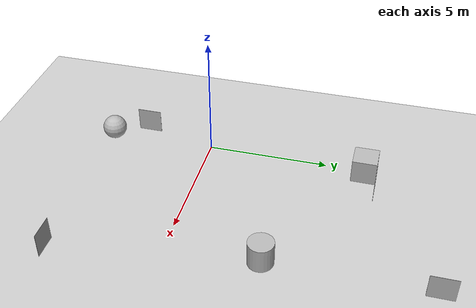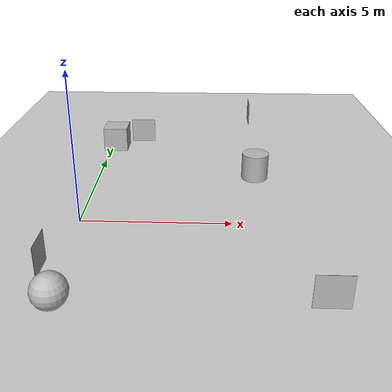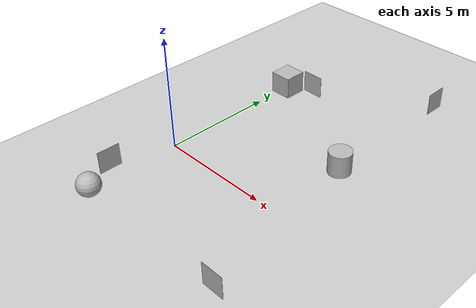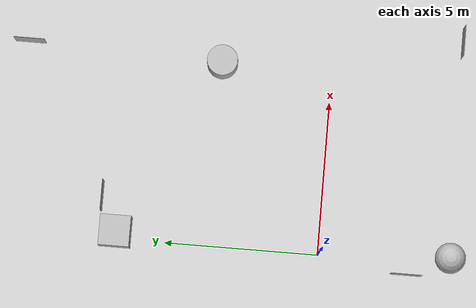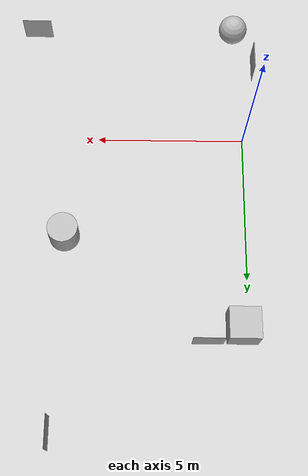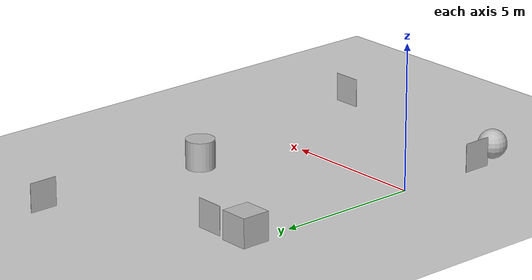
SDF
<sdf version="1.7">
 <world name="default">
  <light name="sun" type="directional">
   <pose>0 0 10 0 -0 0</pose>
   <diffuse>0.8 0.8 0.8 1</diffuse>
   <specular>0.2 0.2 0.2 1</specular>
   <attenuation>
    <range>1000</range>
    <constant>0.9</constant>
    <linear>0.01</linear>
    <quadratic>0.001</quadratic>
   </attenuation>
   <direction>-0.5 0.1 -0.9</direction>
   <spot><inner_angle>0</inner_angle><outer_angle>0</outer_angle><falloff>0</falloff></spot>
  </light>
  <model name="ground_plane">
   <static>1</static>
   <link name="link">
    <collision name="collision">
     <geometry><plane><normal>0 0 1</normal><size>100 100</size></plane></geometry>
     <surface>
      <contact><collide_bitmask>65535</collide_bitmask></contact>
      <friction><ode><mu>100</mu><mu2>50</mu2></ode></friction>
     </surface>
    </collision>
    <visual name="visual">
     <cast_shadows>0</cast_shadows>
     <geometry><plane><normal>0 0 1</normal><size>100 100</size></plane></geometry>
     <material>
      <script><uri>file://media/materials/scripts/gazebo.material</uri><name>Gazebo/Grey</name></script>
     </material>
    </visual>
   </link>
  </model>
  <gravity>0 0 -9.8</gravity>
  <magnetic_field>6e-06 2.3e-05 -4.2e-05</magnetic_field>
  <atmosphere type="adiabatic"/>
  <physics type="ode">
   <max_step_size>0.001</max_step_size>
   <real_time_factor>1</real_time_factor>
   <real_time_update_rate>1000</real_time_update_rate>
  </physics>
  <scene><ambient>0.4 0.4 0.4 1</ambient><background>0.7 0.7 0.7 1</background><shadows>1</shadows></scene>
  <spherical_coordinates>
   <surface_model>EARTH_WGS84</surface_model>
   <latitude_deg>0</latitude_deg>
   <longitude_deg>0</longitude_deg>
   <elevation>0</elevation>
   <heading_deg>0</heading_deg>
  </spherical_coordinates>
  <model name="textured_shapes_cube">
   <link name="box">
    <pose>0 -1.5 -0 0 -0 0</pose>
    <inertial>
     <inertia><ixx>1</ixx><ixy>0</ixy><ixz>0</ixz><iyy>1</iyy><iyz>0</iyz><izz>1</izz></inertia>
     <mass>1</mass>
    </inertial>
    <visual name="visual">
     <geometry><box><size>1 1 1</size></box></geometry>
     <material>
      <script>
       <uri>model://textured_shapes/materials/scripts</uri>
       <uri>model://textured_shapes/materials/textures</uri>
       <name>TexturedShape/Squares</name>
      </script>
      <shader type="pixel"/>
     </material>
    </visual>
    <collision name="collision">
     <geometry><box><size>1 1 1</size></box></geometry>
     <surface>
      <friction>
       <ode><mu>1</mu><mu2>1</mu2><fdir1>0 0 0</fdir1><slip1>0</slip1><slip2>0</slip2></ode>
       <torsional>
        <coefficient>1</coefficient>
        <patch_radius>0</patch_radius>
        <surface_radius>0</surface_radius>
        <use_patch_radius>1</use_patch_radius>
        <ode><slip>0</slip></ode>
       </torsional>
      </friction>
      <bounce><restitution_coefficient>0</restitution_coefficient><threshold>1e+06</threshold></bounce>
      <contact>
       <collide_without_contact>0</collide_without_contact>
       <collide_without_contact_bitmask>1</collide_without_contact_bitmask>
       <collide_bitmask>1</collide_bitmask>
       <ode>
        <soft_cfm>0</soft_cfm>
        <soft_erp>0.2</soft_erp>
        <kp>1e+13</kp>
        <kd>1</kd>
        <max_vel>0.01</max_vel>
        <min_depth>0</min_depth>
       </ode>
       <bullet>
        <split_impulse>1</split_impulse>
        <split_impulse_penetration_threshold>-0.01</split_impulse_penetration_threshold>
        <soft_cfm>0</soft_cfm>
        <soft_erp>0.2</soft_erp>
        <kp>1e+13</kp>
        <kd>1</kd>
       </bullet>
      </contact>
     </surface>
    </collision>
   </link>
   <static>0</static>
   <pose>-1.27786 6.5945 0.500001 0 1e-06 1.5708</pose>
  </model>
  <model name="textured_shapes_cylinder">
   <link name="cylinder">
    <pose>0 1.5 0 0 -0 0</pose>
    <inertial>
     <inertia><ixx>1</ixx><ixy>0</ixy><ixz>0</ixz><iyy>1</iyy><iyz>0</iyz><izz>1</izz></inertia>
     <mass>1</mass>
    </inertial>
    <visual name="visual">
     <geometry><cylinder><radius>0.5</radius><length>1</length></cylinder></geometry>
     <material>
      <script>
       <uri>model://textured_shapes/materials/scripts</uri>
       <uri>model://textured_shapes/materials/textures</uri>
       <name>TexturedShape/Squares</name>
      </script>
      <shader type="pixel"/>
     </material>
    </visual>
    <collision name="collision">
     <geometry><cylinder><radius>0.5</radius><length>1</length></cylinder></geometry>
     <surface>
      <friction>
       <ode><mu>1</mu><mu2>1</mu2><fdir1>0 0 0</fdir1><slip1>0</slip1><slip2>0</slip2></ode>
       <torsional>
        <coefficient>1</coefficient>
        <patch_radius>0</patch_radius>
        <surface_radius>0</surface_radius>
        <use_patch_radius>1</use_patch_radius>
        <ode><slip>0</slip></ode>
       </torsional>
      </friction>
      <bounce><restitution_coefficient>0</restitution_coefficient><threshold>1e+06</threshold></bounce>
      <contact>
       <collide_without_contact>0</collide_without_contact>
       <collide_without_contact_bitmask>1</collide_without_contact_bitmask>
       <collide_bitmask>1</collide_bitmask>
       <ode>
        <soft_cfm>0</soft_cfm>
        <soft_erp>0.2</soft_erp>
        <kp>1e+13</kp>
        <kd>1</kd>
        <max_vel>0.01</max_vel>
        <min_depth>0</min_depth>
       </ode>
       <bullet>
        <split_impulse>1</split_impulse>
        <split_impulse_penetration_threshold>-0.01</split_impulse_penetration_threshold>
        <soft_cfm>0</soft_cfm>
        <soft_erp>0.2</soft_erp>
        <kp>1e+13</kp>
        <kd>1</kd>
       </bullet>
      </contact>
     </surface>
    </collision>
   </link>
   <static>0</static>
   <pose>5.3544 4.9443 0.5 0 0 -2.69045</pose>
  </model>
  <model name="textured_shapes_sphere">
   <link name="sphere">
    <inertial>
     <inertia><ixx>1</ixx><ixy>0</ixy><ixz>0</ixz><iyy>1</iyy><iyz>0</iyz><izz>1</izz></inertia>
     <mass>1</mass>
    </inertial>
    <visual name="visual">
     <geometry><sphere><radius>0.5</radius></sphere></geometry>
     <material>
      <script>
       <uri>model://textured_shapes/materials/scripts</uri>
       <uri>model://textured_shapes/materials/textures</uri>
       <name>TexturedShape/Squares</name>
      </script>
      <shader type="pixel"/>
     </material>
    </visual>
    <collision name="collision">
     <geometry><sphere><radius>0.5</radius></sphere></geometry>
     <surface>
      <friction>
       <ode><mu>1</mu><mu2>1</mu2><fdir1>0 0 0</fdir1><slip1>0</slip1><slip2>0</slip2></ode>
       <torsional>
        <coefficient>1</coefficient>
        <patch_radius>0</patch_radius>
        <surface_radius>0</surface_radius>
        <use_patch_radius>1</use_patch_radius>
        <ode><slip>0</slip></ode>
       </torsional>
      </friction>
      <bounce><restitution_coefficient>0</restitution_coefficient><threshold>1e+06</threshold></bounce>
      <contact>
       <collide_without_contact>0</collide_without_contact>
       <collide_without_contact_bitmask>1</collide_without_contact_bitmask>
       <collide_bitmask>1</collide_bitmask>
       <ode>
        <soft_cfm>0</soft_cfm>
        <soft_erp>0.2</soft_erp>
        <kp>1e+13</kp>
        <kd>1</kd>
        <max_vel>0.01</max_vel>
        <min_depth>0</min_depth>
       </ode>
       <bullet>
        <split_impulse>1</split_impulse>
        <split_impulse_penetration_threshold>-0.01</split_impulse_penetration_threshold>
        <soft_cfm>0</soft_cfm>
        <soft_erp>0.2</soft_erp>
        <kp>1e+13</kp>
        <kd>1</kd>
       </bullet>
      </contact>
     </surface>
    </collision>
   </link>
   <static>0</static>
   <pose>0.244562 -4.27614 0.5 0 -0 0</pose>
  </model>
  <model name="Apriltag36_11_00000">
   <link name="main">
    <visual name="main_Visual">
     <geometry><box><size>1 1 0.01</size></box></geometry>
     <material>
      <script>
       <uri>model://Apriltag36_11_00000/materials/scripts</uri>
       <uri>model://Apriltag36_11_00000/materials/textures</uri>
       <name>Apriltag36_11_00000</name>
      </script>
     </material>
    </visual>
   </link>
   <static>1</static>
   <pose>-0.40873 -2.87779 0.63443 3.14159 1.57079 3.14159</pose>
  </model>
  <model name="Apriltag36_11_00001">
   <link name="main">
    <visual name="main_Visual">
     <geometry><box><size>1 1 0.01</size></box></geometry>
     <material>
      <script>
       <uri>model://Apriltag36_11_00001/materials/scripts</uri>
       <uri>model://Apriltag36_11_00001/materials/textures</uri>
       <name>Apriltag36_11_00001</name>
      </script>
     </material>
    </visual>
   </link>
   <static>1</static>
   <pose>1.33435 7.11311 0.591124 1.5708 -0 0</pose>
  </model>
  <model name="Apriltag36_11_00002">
   <link name="main">
    <visual name="main_Visual">
     <geometry><box><size>1 1 0.01</size></box></geometry>
     <material>
      <script>
       <uri>model://Apriltag36_11_00002/materials/scripts</uri>
       <uri>model://Apriltag36_11_00002/materials/textures</uri>
       <name>Apriltag36_11_00002</name>
      </script>
     </material>
    </visual>
   </link>
   <static>1</static>
   <pose>6.19456 9.89554 0.602535 3.14159 -1.57079 3.14159</pose>
  </model>
  <model name="Apriltag36_11_00003">
   <link name="main">
    <visual name="main_Visual">
     <geometry><box><size>1 1 0.01</size></box></geometry>
     <material>
      <script>
       <uri>model://Apriltag36_11_00003/materials/scripts</uri>
       <uri>model://Apriltag36_11_00003/materials/textures</uri>
       <name>Apriltag36_11_00003</name>
      </script>
     </material>
    </visual>
   </link>
   <static>1</static>
   <pose>7.30043 -4.17535 0.564106 -1.5708 0 0</pose>
  </model>
 </world>
</sdf>
